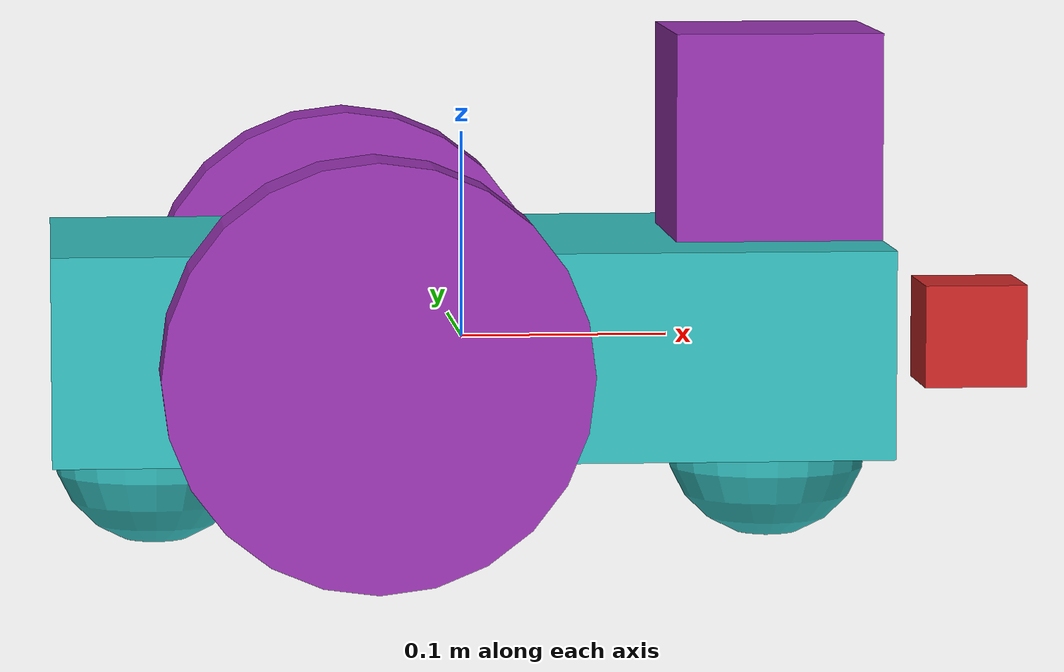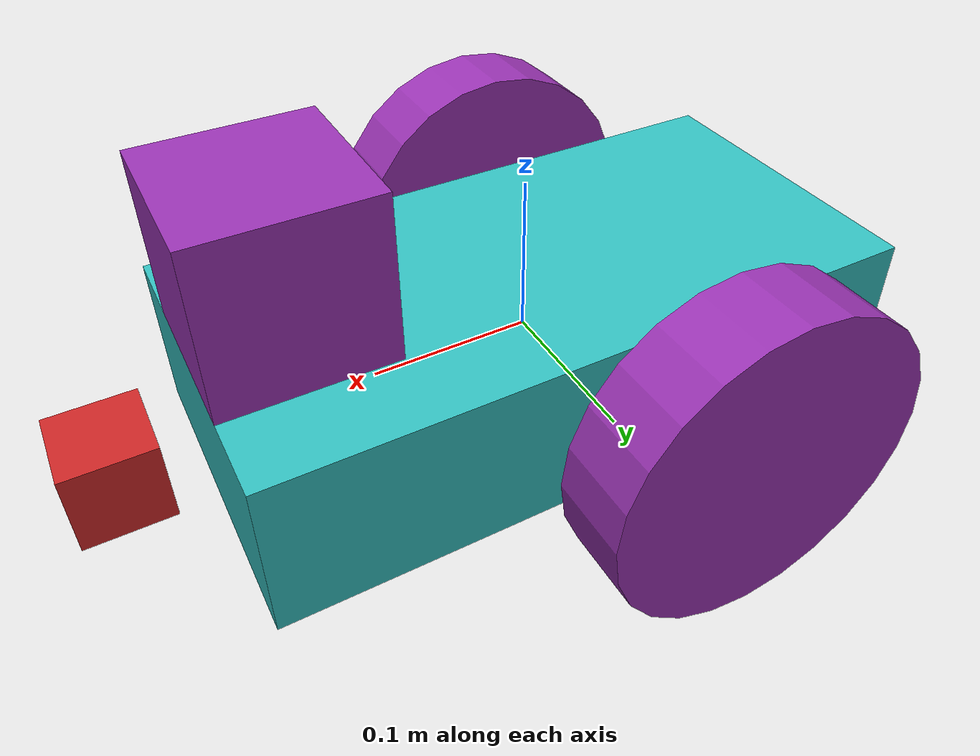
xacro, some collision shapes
<?xml version="1.0" ?>

<robot name="my_robot" xmlns:xacro="https://www.ros.org/wiki/xacro" >
  <!--import plugin gazebo-->
  <xacro:include filename="$(find my_robot)/urdf/my_robot.gazebo" />

  <!--Link (robot_footprint)-->
  <link name="robot_footprint"></link>

  <!--Joint (robot_footprint)-->
  <joint name="robot_footprint_joint" type="fixed">
    <origin xyz="0 0 0" rpy="0 0 0" />
    <parent link="robot_footprint"/>
    <child link="chassis" />
  </joint>

  <!--Link (chasiss)-->
  <link name="chassis">
    <pose>0 0 0.1 0 0 0</pose>

    <inertial>
      <mass value="15.0"/>
      <origin xyz="0.0 0 0" rpy=" 0 0 0"/>
      <inertia
          ixx="0.1" ixy="0" ixz="0"
          iyy="0.1" iyz="0"
          izz="0.1"
      />
    </inertial>

    <collision name='collision'>
      <origin xyz="0 0 0" rpy=" 0 0 0"/>
      <geometry>
        <box size=".4 .2 .1"/>
      </geometry>
    </collision>

    <visual name='chassis_visual'>
      <origin xyz="0 0 0" rpy=" 0 0 0"/>
      <geometry>
        <box size=".4 .2 .1"/>
      </geometry>
    </visual>

    <collision name='back_caster_collision'>
      <origin xyz="-0.15 0 -0.05" rpy=" 0 0 0"/>
      <geometry>
        <sphere radius="0.0499"/>
      </geometry>
    </collision>

    <visual name='back_caster_visual'>
      <origin xyz="-0.15 0 -0.05" rpy=" 0 0 0"/>
      <geometry>
        <sphere radius="0.05"/>
      </geometry>
    </visual>

    <collision name='front_caster_collision'>
      <origin xyz="0.15 0 -0.05" rpy=" 0 0 0"/>
      <geometry>
        <sphere radius="0.0499"/>
      </geometry>
    </collision>

    <visual name='front_caster_visual'>
      <origin xyz="0.15 0 -0.05" rpy=" 0 0 0"/>
      <geometry>
        <sphere radius="0.05"/>
      </geometry>
    </visual>
  </link>
   <!-- this is the right wheel link-->

  <link name='r_wheel'>

    <collision name='right_wheel_collision'>
     <origin xyz='0 0 0' rpy='0 1.5707 1.5707'/>
     <geometry>
       	<cylinder radius= '0.1' length= '0.05'/>
     </geometry>

    </collision>

    <visual name='right_wheel_visual'>
      <origin xyz='0 0 0' rpy='0 1.5707 1.5707'/>
      <geometry>
        <cylinder radius= '0.1' length= '0.05'/>
      </geometry>
    </visual>

    <inertial>
     <geometry>
	      <cylinder radius= '0.1' length= '0.05'/>
      </geometry>
      <origin xyz='0 0 0' rpy='0 1.5707 1.5707'/>
      <mass value='5'/>
      <inertia ixx="0.1" ixy="0" ixz="0" iyy="0.1" iyz="0" izz="0.1"/>
    </inertial>

  </link>

  <!--joint right wheel-->
  <joint type="continuous" name="right_wheel_joint">
    <origin xyz="-0.05 -0.15 0" rpy="0 0 0"/>
    <child link="r_wheel"/>
    <parent link="chassis"/>
    <axis rpy="0 0 0" xyz="0 1 0"/>
    <limit effort="10000" velocity="1000"/>
    <dynamics damping="1.0" friction="1.0"/>
  </joint>

   <!-- this is the left wheel link-->

  <link name='l_wheel'>

    <collision name='left_wheel_collision'>
      <geometry>
	      <cylinder radius= '0.1' length= '0.05'/>
      </geometry>
      <origin xyz='0 0 0' rpy='0 1.5707 1.5707'/>
    </collision>

    <visual name='left_wheel_visual'>
      <geometry>
	        <cylinder radius= '0.1' length= '0.05'/>
      </geometry>
      <origin xyz='0 0 0' rpy='0 1.5707 1.5707'/>
    </visual>

    <inertial>
      <geometry>
	       <cylinder radius= '0.1' length= '0.05'/>
      </geometry>
      <origin xyz='0 0 0' rpy='0 1.5707 1.5707'/>
      <mass value='5'/>
      <inertia ixx="0.1" ixy="0" ixz="0" iyy="0.1" iyz="0" izz="0.1"/>
    </inertial>

  </link>
  <!--Joint (left_wheel_hinge)-->
  <joint type="continuous" name="left_wheel_joint">
    <origin xyz="-0.05 0.15 0" rpy="0 0 0"/>
    <child link="l_wheel" />
    <parent link="chassis"/>
    <axis xyz="0 1 0" rpy="0 0 0"/>
    <limit effort="10000" velocity="1000"/>
    <joint_properties damping="1.0" friction="1.0" />
  </joint>

  <!--Link (camera)-->
  <link name='camera'>
    <inertial>
      <origin xyz="0 0 0" rpy="0 0 0"/>
      <mass value="0.1"/>
      <box_inertia m="0.1" x="0.05" y="0.05" z="0.05"/>
      <inertia
          ixx="1e-6" ixy="0" ixz="0"
          iyy="1e-6" iyz="0"
          izz="1e-6"
      />
    </inertial>

    <visual name='camera_visual'>
      <origin xyz="0 0 0" rpy="0 0 0"/>
      <geometry>
        <box size=".05 .05 .05"/>
      </geometry>
    </visual>

    <collision name='camera_collision'>
      <origin xyz="0 0 0" rpy="0 0 0"/>
      <geometry>
        <box size=".05 .05 .05"/>
      </geometry>
    </collision>
  </link>

  <!--Joint (camera)-->
  <joint type="fixed" name="camera_joint">
    <origin xyz="0.25 0 0" rpy="0 0 0"/>
    <child link="camera"/>
    <parent link="chassis"/>
    <axis xyz="0 1 0"/>
  </joint>
  <!--joint of RGB-D camera-->
  <joint name="camera_optical_joint" type="fixed">
    <origin xyz="0 0 0" rpy="-1.5707 0 -1.5707"/>
    <parent link="camera"/>
    <child link="camera_link_optical"/>
  </joint>
  <link name="camera_link_optical">
  </link>
  <!--Links (hokuyo)-->
  <link name='hokuyo'>
    <inertial>
      <origin xyz="0 0 0" rpy="0 0 0"/>
      <mass value="1e-5"/>
      <inertia
          ixx="1e-6" ixy="0" ixz="0"
          iyy="1e-6" iyz="0"
          izz="1e-6"
      />
    </inertial>

    <visual name='hokuyo_visual'>
      <origin xyz="0 0 0" rpy="0 0 0"/>
      <geometry>
        <mesh filename="package://my_robot/meshes/hokuyo.dae"/>
      </geometry>
    </visual>

    <collision name='hokuyo_collision'>
      <origin xyz="0 0 0" rpy="0 0 0"/>
      <geometry>
        <box size=".1 .1 .1"/>
      </geometry>
    </collision>
  </link>

  <!--Joint (hokuyo)-->
  <joint type="fixed" name="hokuyo_joint">
    <origin xyz="0.15 0 .1" rpy="0 0 0"/>
    <child link="hokuyo"/>
    <parent link="chassis"/>
    <axis xyz="0 1 0"/>
  </joint>

   <!--give your robot some color-->
  <gazebo reference="chassis">
    <material>Gazebo/TurquoiseGlowOutline</material>
  </gazebo>

  <gazebo reference="l_wheel">
    <material>Gazebo/Purple</material>
  </gazebo>

  <gazebo reference="r_wheel">
    <material>Gazebo/Purple</material>
  </gazebo>

  <gazebo reference="camera">
    <material>Gazebo/RedBright</material>
  </gazebo>

  <gazebo reference="hokuyo">
    <material>Gazebo/Purple</material>
  </gazebo>

</robot>
